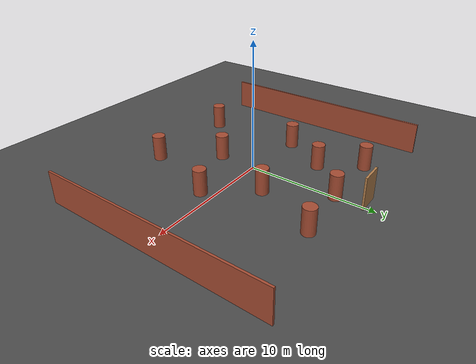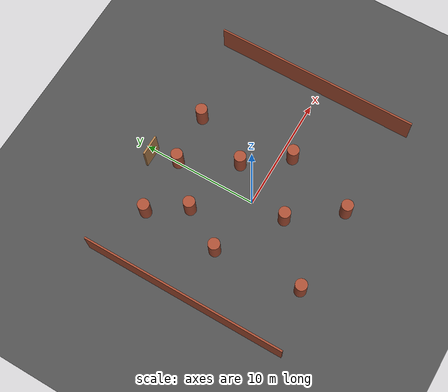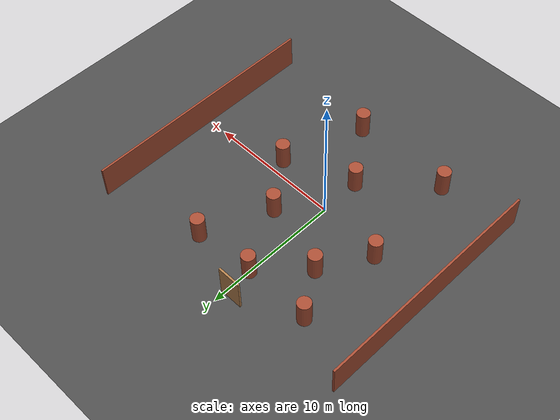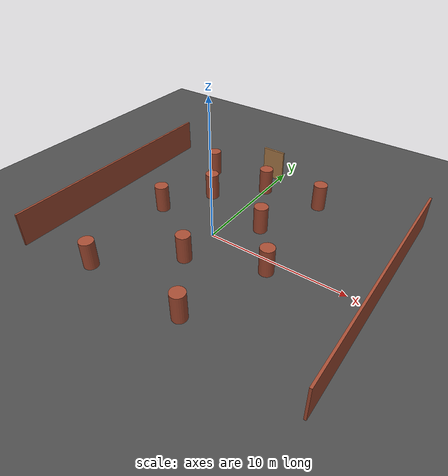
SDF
<?xml version="1.0" encoding="UTF-8" ?>
<sdf version="1.6">
  <world name="default">
    <!-- 场景设置 -->
    <scene>
      <ambient>0.5 0.5 0.5 1</ambient>
      <background>0.5 0.5 0.5 1</background>
      <shadows>false</shadows>
    </scene>

    <!-- 物理引擎设置 -->
    <physics type="ode">
      <gravity>0 0 -9.81</gravity>
      <ode>
        <solver>
          <type>quick</type>
          <iters>10</iters>
          <sor>1.3</sor>
        </solver>
        <constraints>
          <cfm>0.0</cfm>
          <erp>0.2</erp>
          <contact_max_correcting_vel>10</contact_max_correcting_vel>
          <contact_surface_layer>0.001</contact_surface_layer>
        </constraints>
      </ode>
      <max_step_size>0.001</max_step_size>
    </physics>

    <!-- 灯光设置 -->
    <light type="directional" name="directional_light_1">
      <pose>0 0 10 0.1 0.1 0</pose>
      <diffuse>1 1 1 1</diffuse>
      <specular>1 1 1 1</specular>
      <attenuation>
        <range>300</range>
      </attenuation>
      <direction>0.1 0.1 -1</direction>
      <cast_shadows>false</cast_shadows>
    </light>

    <!-- 地面（普通室内地面） -->
    <model name="floor">
      <pose>0 0 0 0 0 0</pose>
      <link name="floor_link">
        <collision name="floor_collision">
          <geometry>
            <plane>
              <normal>0 0 1</normal>
              <size>50 50</size>
            </plane>
          </geometry>
        </collision>
        <visual name="floor_visual">
          <geometry>
            <plane>
              <normal>0 0 1</normal>
              <size>100 100</size>
            </plane>
          </geometry>
          <material>
            <script>
              <uri>file://media/materials/scripts/gazebo.material</uri>
              <name>Gazebo/Road</name>
            </script>
            <ambient>1 1 1 1</ambient> <!-- 黄色 -->
          </material>
        </visual>
      </link>
      <static>true</static>
    </model>

    <!-- 障碍物：10个圆柱，位置根据给定坐标设置 -->
    <!-- 障碍物 1 -->
    <model name="unit_cylinder_0">
      <pose>4.43 7.36 1 0 0 0</pose>
      <link name="link">
        <collision name="unit_cylinder_0_collision">
          <geometry>
            <cylinder>
              <radius>0.5</radius>
              <length>2.0</length>
            </cylinder>
          </geometry>
        </collision>
        <visual name="unit_cylinder_0_visual">
          <geometry>
            <cylinder>
              <radius>0.5</radius>
              <length>2.0</length>
            </cylinder>
          </geometry>
          <material>
            <script>
              <uri>file://media/materials/scripts/gazebo.material</uri>
              <name>Gazebo/Bricks</name>
            </script>
              <ambient>1 0.5 0 1</ambient> <!-- 橙色 -->
              <diffuse>1 0.5 0 1</diffuse>
          </material>
        </visual>
      </link>
    </model>

    <!-- 障碍物 2 -->
    <model name="unit_cylinder_1">
      <pose>0.00 7.00 1 0 0 0</pose>
      <link name="link">
        <collision name="unit_cylinder_1_collision">
          <geometry>
            <cylinder>
              <radius>0.5</radius>
              <length>2.0</length>
            </cylinder>
          </geometry>
        </collision>
        <visual name="unit_cylinder_1_visual">
          <geometry>
            <cylinder>
              <radius>0.5</radius>
              <length>2.0</length>
            </cylinder>
          </geometry>
          <material>
            <script>
              <uri>file://media/materials/scripts/gazebo.material</uri>
              <name>Gazebo/Bricks</name>
            </script>
              <ambient>1 0.5 0 1</ambient> <!-- 橙色 -->
              <diffuse>1 0.5 0 1</diffuse>
          </material>
        </visual>
      </link>
    </model>

    <!-- 障碍物 3 -->
    <model name="unit_cylinder_2">
      <pose>5.00 -1.00 1 0 0 0</pose>
      <link name="link">
        <collision name="unit_cylinder_2_collision">
          <geometry>
            <cylinder>
              <radius>0.5</radius>
              <length>2.0</length>
            </cylinder>
          </geometry>
        </collision>
        <visual name="unit_cylinder_2_visual">
          <geometry>
            <cylinder>
              <radius>0.5</radius>
              <length>2.0</length>
            </cylinder>
          </geometry>
          <material>
            <script>
              <uri>file://media/materials/scripts/gazebo.material</uri>
              <name>Gazebo/Bricks</name>
            </script>
            <ambient>1 0.5 0 1</ambient> <!-- 橙色 -->
            <diffuse>1 0.5 0 1</diffuse>
          </material>
        </visual>
      </link>
    </model>

    <!-- 障碍物 4 -->
    <model name="unit_cylinder_3">
      <pose>-4.46 -6.94 1 0 0 0</pose>
      <link name="link">
        <collision name="unit_cylinder_3_collision">
          <geometry>
            <cylinder>
              <radius>0.5</radius>
              <length>2.0</length>
            </cylinder>
          </geometry>
        </collision>
        <visual name="unit_cylinder_3_visual">
          <geometry>
            <cylinder>
              <radius>0.5</radius>
              <length>2.0</length>
            </cylinder>
          </geometry>
          <material>
            <script>
              <uri>file://media/materials/scripts/gazebo.material</uri>
              <name>Gazebo/Bricks</name>
            </script>
            <ambient>1 0.5 0 1</ambient> <!-- 橙色 -->
            <diffuse>1 0.5 0 1</diffuse>
          </material>
        </visual>
      </link>
    </model>

    <!-- 障碍物 5 -->
    <model name="unit_cylinder_4">
      <pose>2.37 2.46 1 0 0 0</pose>
      <link name="link">
        <collision name="unit_cylinder_4_collision">
          <geometry>
            <cylinder>
              <radius>0.5</radius>
              <length>2.0</length>
            </cylinder>
          </geometry>
        </collision>
        <visual name="unit_cylinder_4_visual">
          <geometry>
            <cylinder>
              <radius>0.5</radius>
              <length>2.0</length>
            </cylinder>
          </geometry>
          <material>
            <script>
              <uri>file://media/materials/scripts/gazebo.material</uri>
              <name>Gazebo/Bricks</name>
            </script>
            <ambient>1 0.5 0 1</ambient> <!-- 橙色 -->
            <diffuse>1 0.5 0 1</diffuse>
          </material>
        </visual>
      </link>
    </model>

    <!-- 障碍物 6 -->
    <model name="unit_cylinder_5">
    <pose>0.00 -3.00 1 0 0 0</pose>
      <link name="link">
        <collision name="unit_cylinder_5_collision">
          <geometry>
            <cylinder>
              <radius>0.5</radius>
              <length>2.0</length>
            </cylinder>
          </geometry>
        </collision>
        <visual name="unit_cylinder_5_visual">
          <geometry>
            <cylinder>
              <radius>0.5</radius>
              <length>2.0</length>
            </cylinder>
          </geometry>
          <material>
            <script>
              <uri>file://media/materials/scripts/gazebo.material</uri>
              <name>Gazebo/Bricks</name>
            </script>
            <ambient>1 0.5 0 1</ambient> <!-- 橙色 -->
            <diffuse>1 0.5 0 1</diffuse>
          </material>
        </visual>
      </link>
    </model>

    <!-- 障碍物 7 -->
    <model name="unit_cylinder_6">
      <pose>-5.00 7.00 1 0 0 0</pose>
      <link name="link">
        <collision name="unit_cylinder_6_collision">
          <geometry>
            <cylinder>
              <radius>0.5</radius>
              <length>2.0</length>
            </cylinder>
          </geometry>
        </collision>
        <visual name="unit_cylinder_6_visual">
          <geometry>
            <cylinder>
              <radius>0.5</radius>
              <length>2.0</length>
            </cylinder>
          </geometry>
          <material>
            <script>
              <uri>file://media/materials/scripts/gazebo.material</uri>
              <name>Gazebo/Bricks</name>
            </script>
            <ambient>1 0.5 0 1</ambient> <!-- 橙色 -->
            <diffuse>1 0.5 0 1</diffuse>
          </material>
        </visual>
      </link>
    </model>

    <!-- 障碍物 8 -->
    <model name="unit_cylinder_7">
      <pose>3.00 -7.00 1 0 0 0</pose>
      <link name="link">
        <collision name="unit_cylinder_7_collision">
          <geometry>
            <cylinder>
              <radius>0.5</radius>
              <length>2.0</length>
            </cylinder>
          </geometry>
        </collision>
        <visual name="unit_cylinder_7_visual">
          <geometry>
            <cylinder>
              <radius>0.5</radius>
              <length>2.0</length>
            </cylinder>
          </geometry>
          <material>
            <script>
              <uri>file://media/materials/scripts/gazebo.material</uri>
              <name>Gazebo/Bricks</name>
            </script>
            <ambient>1 0.5 0 1</ambient> <!-- 橙色 -->
            <diffuse>1 0.5 0 1</diffuse>
          </material>
        </visual>
      </link>
    </model>

    <!-- 障碍物 9 -->
    <model name="unit_cylinder_8">
      <pose>-5.00 0.50 1 0 0 0</pose>
      <link name="link">
        <collision name="unit_cylinder_8_collision">
          <geometry>
            <cylinder>
              <radius>0.5</radius>
              <length>2.0</length>
            </cylinder>
          </geometry>
        </collision>
        <visual name="unit_cylinder_8_visual">
          <geometry>
            <cylinder>
              <radius>0.5</radius>
              <length>2.0</length>
            </cylinder>
          </geometry>
          <material>
            <script>
              <uri>file://media/materials/scripts/gazebo.material</uri>
              <name>Gazebo/Bricks</name>
            </script>
            <ambient>1 0.5 0 1</ambient> <!-- 橙色 -->
            <diffuse>1 0.5 0 1</diffuse>
          </material>
        </visual>
      </link>
    </model>

    <!-- 障碍物 10 -->
    <model name="unit_cylinder_9">
      <pose>-3.00 4.00 1 0 0 0</pose>
      <link name="link">
        <collision name="unit_cylinder_9_collision">
          <geometry>
            <cylinder>
              <radius>0.5</radius>
              <length>2.0</length>
            </cylinder>
          </geometry>
        </collision>
        <visual name="unit_cylinder_9_visual">
          <geometry>
            <cylinder>
              <radius>0.5</radius>
              <length>2.0</length>
            </cylinder>
          </geometry>
          <material>
            <script>
              <uri>file://media/materials/scripts/gazebo.material</uri>
              <name>Gazebo/Bricks</name>
            </script>
            <ambient>1 0.5 0 1</ambient> <!-- 橙色 -->
            <diffuse>1 0.5 0 1</diffuse>
          </material>
        </visual>
      </link>
    </model>

    <model name='Wall'>
      <pose>0.959603 0.409973 0 0 -0 0</pose>
      <link name='Wall_0'>
        <collision name='Wall_0_Collision'>
          <geometry>
            <box>
              <size>17.5 0.15 2.5</size>
            </box>
          </geometry>
          <pose>0 0 1.25 0 -0 0</pose>
        </collision>
        <visual name='Wall_0_Visual'>
          <pose>0 0 1.25 0 -0 0</pose>
          <geometry>
            <box>
              <size>17.5 0.15 2.5</size>
            </box>
          </geometry>
          <material>
            <script>
              <uri>file://media/materials/scripts/gazebo.material</uri>
              <name>Gazebo/Bricks</name>
            </script>
            <ambient>1 1 1 1</ambient>
          </material>
          <meta>
            <layer>0</layer>
          </meta>
        </visual>
        <pose>-10.628 0.141288 0 0 -0 -1.5708</pose>
      </link>
      <link name='Wall_19'>
        <collision name='Wall_19_Collision'>
          <geometry>
            <box>
              <size>17.75 0.15 2.5</size>
            </box>
          </geometry>
          <pose>0 0 1.25 0 -0 0</pose>
        </collision>
        <visual name='Wall_19_Visual'>
          <pose>0 0 1.25 0 -0 0</pose>
          <geometry>
            <box>
              <size>17.75 0.15 2.5</size>
            </box>
          </geometry>
          <material>
            <script>
              <uri>file://media/materials/scripts/gazebo.material</uri>
              <name>Gazebo/Bricks</name>
            </script>
            <ambient>1 1 1 1</ambient>
          </material>
          <meta>
            <layer>0</layer>
          </meta>
        </visual>
        <pose>10.628 0.141288 0 0 -0 -1.5708</pose>
      </link>
      <static>1</static>
    </model>

  <model name='unit_box_real'>
    <pose>-0.604261 4.60662 0 0 -0 0</pose>
    <link name='unit_box_real'>
      <collision name='unit_box_real_Collision'>
        <geometry>
          <box>
            <size>1.75 0.15 2.5</size>
          </box>
        </geometry>
        <pose>0 0 1.25 0 -0 0</pose>
      </collision>
      <visual name='unit_box_real_Visual'>
        <pose>0 0 1.25 0 -0 0</pose>
        <geometry>
          <box>
            <size>1.75 0.15 2.5</size>
          </box>
        </geometry>
        <material>
          <script>
            <uri>file://media/materials/scripts/gazebo.material</uri>
            <name>Gazebo/Wood</name>
          </script>
          <ambient>1 1 1 1</ambient>
        </material>
        <meta>
          <layer>0</layer>
        </meta>
      </visual>
      <pose>-0 4.53162 0 0 -0 3.14159</pose>
    </link>
  </model>

  </world>
</sdf>
